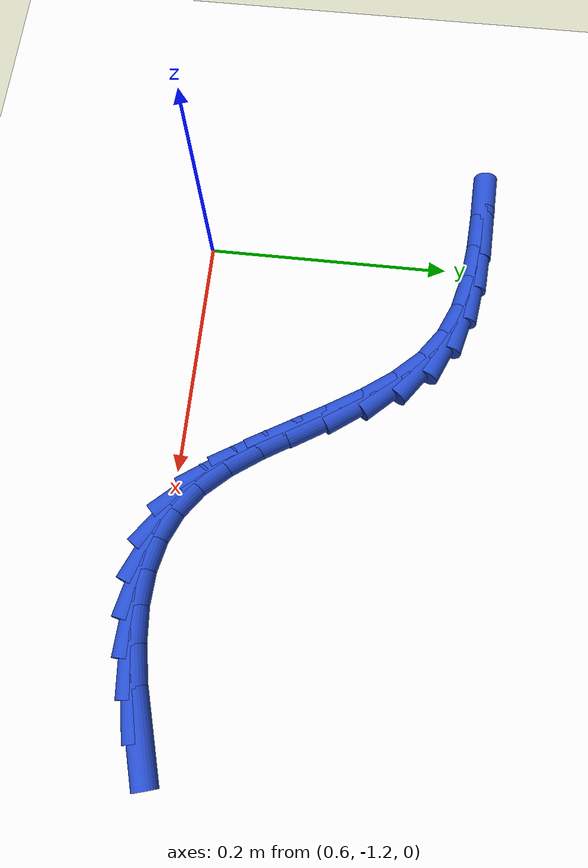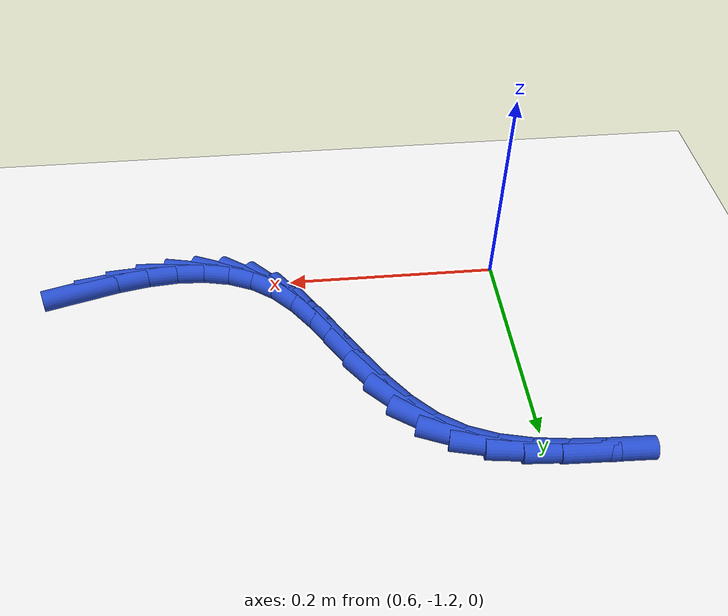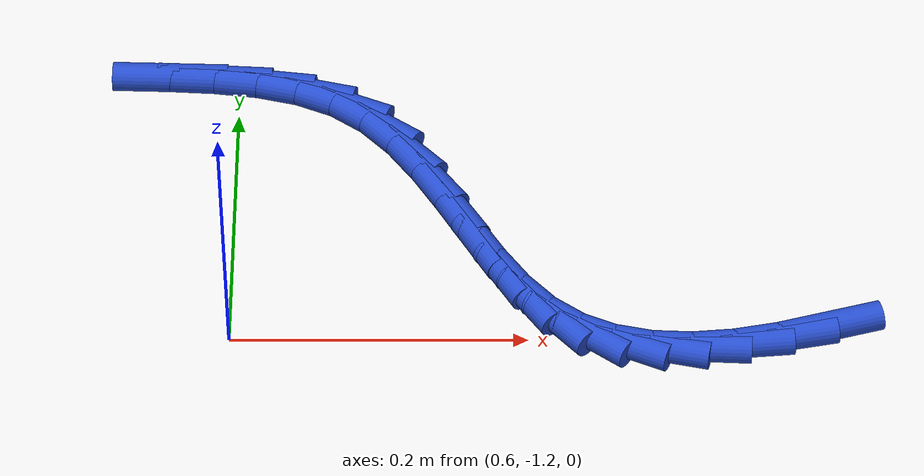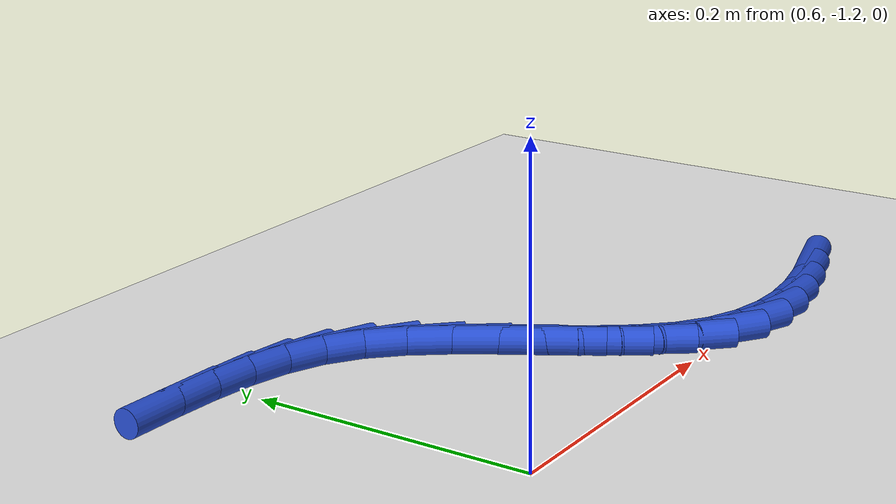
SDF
<sdf version="1.6">
 <world name="default">
  <model name="ground_plane">
   <static>1</static>
   <link name="link">
    <collision name="collision">
     <geometry><plane><normal>0 0 1</normal><size>100 100</size></plane></geometry>
     <surface><friction><ode><mu>100</mu><mu2>50</mu2></ode></friction></surface>
    </collision>
    <visual name="visual">
     <cast_shadows>0</cast_shadows>
     <geometry><plane><normal>0 0 1</normal><size>100 100</size></plane></geometry>
     <material>
      <script><uri>file://media/materials/scripts/gazebo.material</uri><name>Gazebo/WhiteGlow</name></script>
     </material>
    </visual>
   </link>
  </model>
  <model name="line">
   <link name="link_181">
    <pose>0.9972704130000961 -1.1966810471695453 0.01 0 1.57 0.27124566673093453</pose>
    <collision name="collision">
     <geometry><cylinder><radius>0.01</radius><length>0.08</length></cylinder></geometry>
    </collision>
    <visual name="visual">
     <material>
      <script><name>Gazebo/Blue</name><uri>file://media/materials/scripts/gazebo.material</uri></script>
     </material>
     <geometry><cylinder><radius>0.01</radius><length>0.08</length></cylinder></geometry>
    </visual>
   </link>
   <link name="link_182">
    <pose>0.9666952326644873 -1.205183994967092 0.01 0 1.57 0.19096799705651554</pose>
    <collision name="collision">
     <geometry><cylinder><radius>0.01</radius><length>0.08</length></cylinder></geometry>
    </collision>
    <visual name="visual">
     <material>
      <script><name>Gazebo/Blue</name><uri>file://media/materials/scripts/gazebo.material</uri></script>
     </material>
     <geometry><cylinder><radius>0.01</radius><length>0.08</length></cylinder></geometry>
    </visual>
   </link>
   <link name="link_183">
    <pose>0.9371097095858153 -1.210903581455136 0.01 0 1.57 0.08730609657318425</pose>
    <collision name="collision">
     <geometry><cylinder><radius>0.01</radius><length>0.08</length></cylinder></geometry>
    </collision>
    <visual name="visual">
     <material>
      <script><name>Gazebo/Blue</name><uri>file://media/materials/scripts/gazebo.material</uri></script>
     </material>
     <geometry><cylinder><radius>0.01</radius><length>0.08</length></cylinder></geometry>
    </visual>
   </link>
   <link name="link_184">
    <pose>0.9087628021961639 -1.213384746601824 0.01 0 1.57 -0.045105139472008914</pose>
    <collision name="collision">
     <geometry><cylinder><radius>0.01</radius><length>0.08</length></cylinder></geometry>
    </collision>
    <visual name="visual">
     <material>
      <script><name>Gazebo/Blue</name><uri>file://media/materials/scripts/gazebo.material</uri></script>
     </material>
     <geometry><cylinder><radius>0.01</radius><length>0.08</length></cylinder></geometry>
    </visual>
   </link>
   <link name="link_185">
    <pose>0.8819034689276168 -1.2121724303753023 0.01 0 1.57 -0.21023310023707648</pose>
    <collision name="collision">
     <geometry><cylinder><radius>0.01</radius><length>0.08</length></cylinder></geometry>
    </collision>
    <visual name="visual">
     <material>
      <script><name>Gazebo/Blue</name><uri>file://media/materials/scripts/gazebo.material</uri></script>
     </material>
     <geometry><cylinder><radius>0.01</radius><length>0.08</length></cylinder></geometry>
    </visual>
   </link>
   <link name="link_186">
    <pose>0.85678066821226 -1.206811572743718 0.01 0 1.57 -0.4066602298473966</pose>
    <collision name="collision">
     <geometry><cylinder><radius>0.01</radius><length>0.08</length></cylinder></geometry>
    </collision>
    <visual name="visual">
     <material>
      <script><name>Gazebo/Blue</name><uri>file://media/materials/scripts/gazebo.material</uri></script>
     </material>
     <geometry><cylinder><radius>0.01</radius><length>0.08</length></cylinder></geometry>
    </visual>
   </link>
   <link name="link_187">
    <pose>0.8336433584821763 -1.196847113675217 0.01 0 1.57 -0.6231672679703234</pose>
    <collision name="collision">
     <geometry><cylinder><radius>0.01</radius><length>0.08</length></cylinder></geometry>
    </collision>
    <visual name="visual">
     <material>
      <script><name>Gazebo/Blue</name><uri>file://media/materials/scripts/gazebo.material</uri></script>
     </material>
     <geometry><cylinder><radius>0.01</radius><length>0.08</length></cylinder></geometry>
    </visual>
   </link>
   <link name="link_188">
    <pose>0.8127404201046533 -1.1818241431030179 0.01 0 1.57 -0.8241451690590874</pose>
    <collision name="collision">
     <geometry><cylinder><radius>0.01</radius><length>0.08</length></cylinder></geometry>
    </collision>
    <visual name="visual">
     <material>
      <script><name>Gazebo/Blue</name><uri>file://media/materials/scripts/gazebo.material</uri></script>
     </material>
     <geometry><cylinder><radius>0.01</radius><length>0.08</length></cylinder></geometry>
    </visual>
   </link>
   <link name="link_189">
    <pose>0.794110525727028 -1.1616915669788352 0.01 0 1.57 -0.9551129294745894</pose>
    <collision name="collision">
     <geometry><cylinder><radius>0.01</radius><length>0.08</length></cylinder></geometry>
    </collision>
    <visual name="visual">
     <material>
      <script><name>Gazebo/Blue</name><uri>file://media/materials/scripts/gazebo.material</uri></script>
     </material>
     <geometry><cylinder><radius>0.01</radius><length>0.08</length></cylinder></geometry>
    </visual>
   </link>
   <link name="link_190">
    <pose>0.7771248520147553 -1.1376805732268662 0.01 0 1.57 -1.0231708883776742</pose>
    <collision name="collision">
     <geometry><cylinder><radius>0.01</radius><length>0.08</length></cylinder></geometry>
    </collision>
    <visual name="visual">
     <material>
      <script><name>Gazebo/Blue</name><uri>file://media/materials/scripts/gazebo.material</uri></script>
     </material>
     <geometry><cylinder><radius>0.01</radius><length>0.08</length></cylinder></geometry>
    </visual>
   </link>
   <link name="link_191">
    <pose>0.7610223879417191 -1.1112762867214696 0.01 0 1.57 -1.0414116197743446</pose>
    <collision name="collision">
     <geometry><cylinder><radius>0.01</radius><length>0.08</length></cylinder></geometry>
    </collision>
    <visual name="visual">
     <material>
      <script><name>Gazebo/Blue</name><uri>file://media/materials/scripts/gazebo.material</uri></script>
     </material>
     <geometry><cylinder><radius>0.01</radius><length>0.08</length></cylinder></geometry>
    </visual>
   </link>
   <link name="link_192">
    <pose>0.7450421224818015 -1.0839638323370033 0.01 0 1.57 -1.0146377955597963</pose>
    <collision name="collision">
     <geometry><cylinder><radius>0.01</radius><length>0.08</length></cylinder></geometry>
    </collision>
    <visual name="visual">
     <material>
      <script><name>Gazebo/Blue</name><uri>file://media/materials/scripts/gazebo.material</uri></script>
     </material>
     <geometry><cylinder><radius>0.01</radius><length>0.08</length></cylinder></geometry>
    </visual>
   </link>
   <link name="link_193">
    <pose>0.7284230446088875 -1.0572283349478282 0.01 0 1.57 -0.9400253757914072</pose>
    <collision name="collision">
     <geometry><cylinder><radius>0.01</radius><length>0.08</length></cylinder></geometry>
    </collision>
    <visual name="visual">
     <material>
      <script><name>Gazebo/Blue</name><uri>file://media/materials/scripts/gazebo.material</uri></script>
     </material>
     <geometry><cylinder><radius>0.01</radius><length>0.08</length></cylinder></geometry>
    </visual>
   </link>
   <link name="link_194">
    <pose>0.7104041432968607 -1.0325549194283026 0.01 0 1.57 -0.808307878104973</pose>
    <collision name="collision">
     <geometry><cylinder><radius>0.01</radius><length>0.08</length></cylinder></geometry>
    </collision>
    <visual name="visual">
     <material>
      <script><name>Gazebo/Blue</name><uri>file://media/materials/scripts/gazebo.material</uri></script>
     </material>
     <geometry><cylinder><radius>0.01</radius><length>0.08</length></cylinder></geometry>
    </visual>
   </link>
   <link name="link_195">
    <pose>0.6902244075196039 -1.0114287106527853 0.01 0 1.57 -0.6106642317315228</pose>
    <collision name="collision">
     <geometry><cylinder><radius>0.01</radius><length>0.08</length></cylinder></geometry>
    </collision>
    <visual name="visual">
     <material>
      <script><name>Gazebo/Blue</name><uri>file://media/materials/scripts/gazebo.material</uri></script>
     </material>
     <geometry><cylinder><radius>0.01</radius><length>0.08</length></cylinder></geometry>
    </visual>
   </link>
   <link name="link_196">
    <pose>0.6671524341792671 -0.9952804514212561 0.01 0 1.57 -0.3991297805516249</pose>
    <collision name="collision">
     <geometry><cylinder><radius>0.01</radius><length>0.08</length></cylinder></geometry>
    </collision>
    <visual name="visual">
     <material>
      <script><name>Gazebo/Blue</name><uri>file://media/materials/scripts/gazebo.material</uri></script>
     </material>
     <geometry><cylinder><radius>0.01</radius><length>0.08</length></cylinder></geometry>
    </visual>
   </link>
   <link name="link_197">
    <pose>0.6411297352146903 -0.9843049143824566 0.01 0 1.57 -0.23649845802471045</pose>
    <collision name="collision">
     <geometry><cylinder><radius>0.01</radius><length>0.08</length></cylinder></geometry>
    </collision>
    <visual name="visual">
     <material>
      <script><name>Gazebo/Blue</name><uri>file://media/materials/scripts/gazebo.material</uri></script>
     </material>
     <geometry><cylinder><radius>0.01</radius><length>0.08</length></cylinder></geometry>
    </visual>
   </link>
   <link name="link_198">
    <pose>0.6127662860422528 -0.9774690783918847 0.01 0 1.57 -0.1251315476169738</pose>
    <collision name="collision">
     <geometry><cylinder><radius>0.01</radius><length>0.08</length></cylinder></geometry>
    </collision>
    <visual name="visual">
     <material>
      <script><name>Gazebo/Blue</name><uri>file://media/materials/scripts/gazebo.material</uri></script>
     </material>
     <geometry><cylinder><radius>0.01</radius><length>0.08</length></cylinder></geometry>
    </visual>
   </link>
   <link name="link_199">
    <pose>0.5827007796824735 -0.9736871755248389 0.01 0 1.57 -0.058199650186011184</pose>
    <collision name="collision">
     <geometry><cylinder><radius>0.01</radius><length>0.08</length></cylinder></geometry>
    </collision>
    <visual name="visual">
     <material>
      <script><name>Gazebo/Blue</name><uri>file://media/materials/scripts/gazebo.material</uri></script>
     </material>
     <geometry><cylinder><radius>0.01</radius><length>0.08</length></cylinder></geometry>
    </visual>
   </link>
   <link name="link_200">
    <pose>0.5515719091558708 -0.9718734378566194 0.01 0 1.57 -0.029507624914153974</pose>
    <collision name="collision">
     <geometry><cylinder><radius>0.01</radius><length>0.08</length></cylinder></geometry>
    </collision>
    <visual name="visual">
     <material>
      <script><name>Gazebo/Blue</name><uri>file://media/materials/scripts/gazebo.material</uri></script>
     </material>
     <geometry><cylinder><radius>0.01</radius><length>0.08</length></cylinder></geometry>
    </visual>
   </link>
  </model>
 </world>
</sdf>
